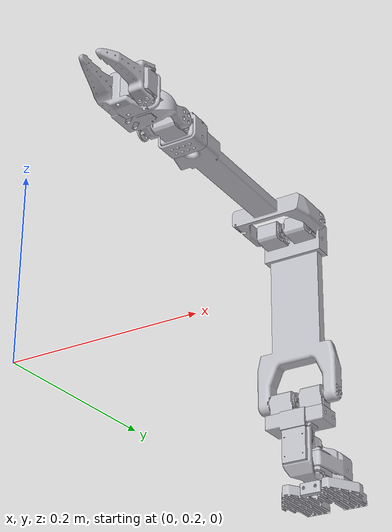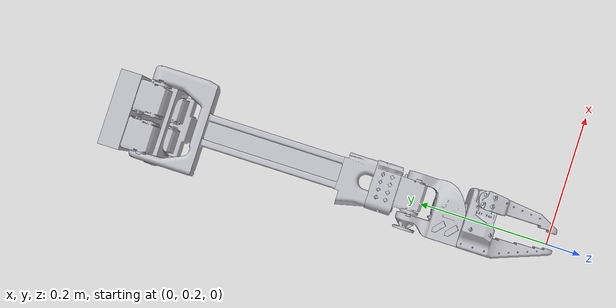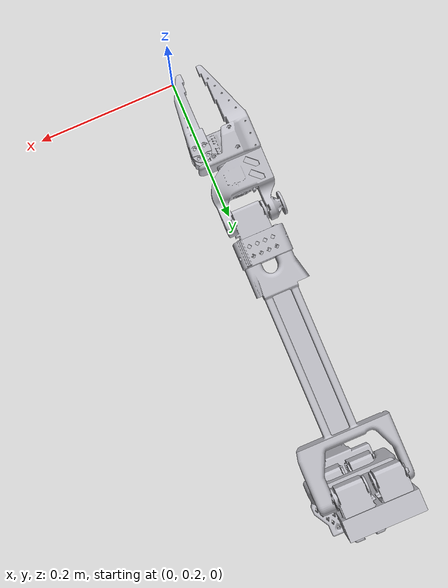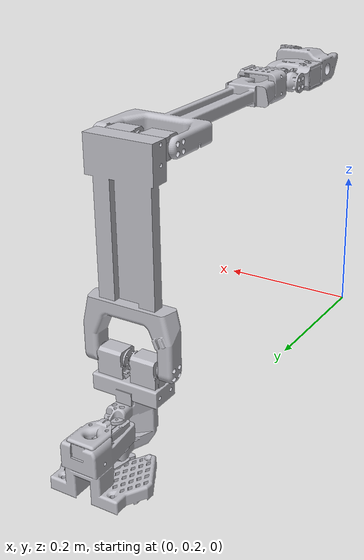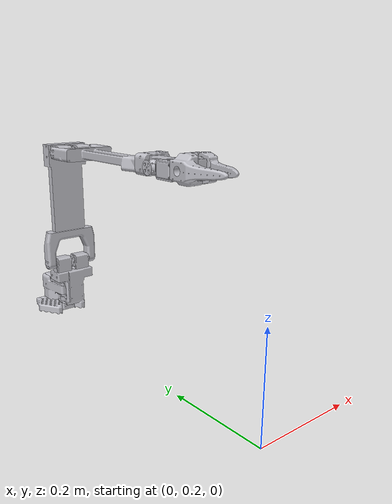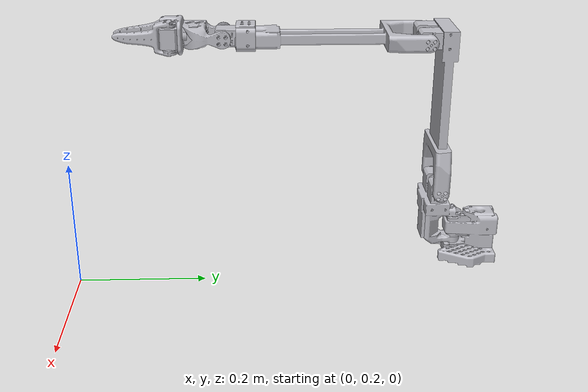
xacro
<?xml version="1.0" ?>
<robot name="PingTi_Arm_5DOF_v4_copy" xmlns:xacro="http://www.ros.org/wiki/xacro">

<xacro:include filename="$(find PingTi_Arm_5DOF_v4_copy_description)/urdf/materials.xacro" />
<xacro:include filename="$(find PingTi_Arm_5DOF_v4_copy_description)/urdf/PingTi_Arm_5DOF_v4_copy.trans" />
<xacro:include filename="$(find PingTi_Arm_5DOF_v4_copy_description)/urdf/PingTi_Arm_5DOF_v4_copy.gazebo" />
<link name="base_link">
  <inertial>
    <origin xyz="-3.294222799751554e-06 0.8236699206879414 0.07022225351061052" rpy="0 0 0"/>
    <mass value="1.1606702094747876"/>
    <inertia ixx="0.001182" iyy="0.001221" izz="0.001296" ixy="-0.0" iyz="-0.000216" ixz="0.0"/>
  </inertial>
  <visual>
    <origin xyz="0 0 0" rpy="0 0 0"/>
    <geometry>
      <mesh filename="/home/cirp-lab/moore/prefab_robots/PingTi_Arm_v3/PingTi_Arm_5DOF_v4_copy_description/meshes/base_link.stl" scale="0.001 0.001 0.001"/>
    </geometry>
    <material name="silver"/>
  </visual>
  <collision>
    <origin xyz="0 0 0" rpy="0 0 0"/>
    <geometry>
      <mesh filename="/home/cirp-lab/moore/prefab_robots/PingTi_Arm_v3/PingTi_Arm_5DOF_v4_copy_description/meshes/base_link.stl" scale="0.001 0.001 0.001"/>
    </geometry>
  </collision>
</link>

<link name="elbow_link_1">
  <inertial>
    <origin xyz="-0.03226838925461216 -0.12833817907324507 -0.0007166743734490777" rpy="0 0 0"/>
    <mass value="1.3198480613227268"/>
    <inertia ixx="0.009627" iyy="0.000869" izz="0.010402" ixy="-0.000472" iyz="-4.8e-05" ixz="-2e-06"/>
  </inertial>
  <visual>
    <origin xyz="-0.04035 -0.73013 -0.397948" rpy="0 0 0"/>
    <geometry>
      <mesh filename="/home/cirp-lab/moore/prefab_robots/PingTi_Arm_v3/PingTi_Arm_5DOF_v4_copy_description/meshes/elbow_link_1.stl" scale="0.001 0.001 0.001"/>
    </geometry>
    <material name="silver"/>
  </visual>
  <collision>
    <origin xyz="-0.04035 -0.73013 -0.397948" rpy="0 0 0"/>
    <geometry>
      <mesh filename="/home/cirp-lab/moore/prefab_robots/PingTi_Arm_v3/PingTi_Arm_5DOF_v4_copy_description/meshes/elbow_link_1.stl" scale="0.001 0.001 0.001"/>
    </geometry>
  </collision>
</link>

<link name="STS3215_wrist_pitch_1">
  <inertial>
    <origin xyz="-0.017826879672448774 -0.012098807908752285 -3.210009195120378e-07" rpy="0 0 0"/>
    <mass value="0.2843033831904074"/>
    <inertia ixx="6.2e-05" iyy="4e-05" izz="7.3e-05" ixy="-1e-06" iyz="-0.0" ixz="-0.0"/>
  </inertial>
  <visual>
    <origin xyz="-0.024329 -0.46443 -0.400273" rpy="0 0 0"/>
    <geometry>
      <mesh filename="/home/cirp-lab/moore/prefab_robots/PingTi_Arm_v3/PingTi_Arm_5DOF_v4_copy_description/meshes/STS3215_wrist_pitch_1.stl" scale="0.001 0.001 0.001"/>
    </geometry>
    <material name="silver"/>
  </visual>
  <collision>
    <origin xyz="-0.024329 -0.46443 -0.400273" rpy="0 0 0"/>
    <geometry>
      <mesh filename="/home/cirp-lab/moore/prefab_robots/PingTi_Arm_v3/PingTi_Arm_5DOF_v4_copy_description/meshes/STS3215_wrist_pitch_1.stl" scale="0.001 0.001 0.001"/>
    </geometry>
  </collision>
</link>

<link name="wrist_link_1">
  <inertial>
    <origin xyz="0.015355318917251514 -0.026091094070632037 -5.328250413333402e-05" rpy="0 0 0"/>
    <mass value="0.22921407551598705"/>
    <inertia ixx="0.00011" iyy="0.000122" izz="0.000191" ixy="-5e-06" iyz="0.0" ixz="0.0"/>
  </inertial>
  <visual>
    <origin xyz="0.013571 -0.43998 -0.399823" rpy="0 0 0"/>
    <geometry>
      <mesh filename="/home/cirp-lab/moore/prefab_robots/PingTi_Arm_v3/PingTi_Arm_5DOF_v4_copy_description/meshes/wrist_link_1.stl" scale="0.001 0.001 0.001"/>
    </geometry>
    <material name="silver"/>
  </visual>
  <collision>
    <origin xyz="0.013571 -0.43998 -0.399823" rpy="0 0 0"/>
    <geometry>
      <mesh filename="/home/cirp-lab/moore/prefab_robots/PingTi_Arm_v3/PingTi_Arm_5DOF_v4_copy_description/meshes/wrist_link_1.stl" scale="0.001 0.001 0.001"/>
    </geometry>
  </collision>
</link>

<link name="STS3215_wrist_roll_1">
  <inertial>
    <origin xyz="-0.01280078718457152 -0.018427300739866648 -3.210009227871957e-07" rpy="0 0 0"/>
    <mass value="0.2843033831904074"/>
    <inertia ixx="4e-05" iyy="6.2e-05" izz="7.3e-05" ixy="1e-06" iyz="-0.0" ixz="0.0"/>
  </inertial>
  <visual>
    <origin xyz="-0.004529 -0.41776 -0.399823" rpy="0 0 0"/>
    <geometry>
      <mesh filename="/home/cirp-lab/moore/prefab_robots/PingTi_Arm_v3/PingTi_Arm_5DOF_v4_copy_description/meshes/STS3215_wrist_roll_1.stl" scale="0.001 0.001 0.001"/>
    </geometry>
    <material name="silver"/>
  </visual>
  <collision>
    <origin xyz="-0.004529 -0.41776 -0.399823" rpy="0 0 0"/>
    <geometry>
      <mesh filename="/home/cirp-lab/moore/prefab_robots/PingTi_Arm_v3/PingTi_Arm_5DOF_v4_copy_description/meshes/STS3215_wrist_roll_1.stl" scale="0.001 0.001 0.001"/>
    </geometry>
  </collision>
</link>

<link name="gripper_mount_1">
  <inertial>
    <origin xyz="-0.015652773080729022 -0.020306011945926294 0.0013358914036544767" rpy="0 0 0"/>
    <mass value="0.44698022927880193"/>
    <inertia ixx="0.000301" iyy="0.000166" izz="0.000333" ixy="-5.6e-05" iyz="1e-06" ixz="4e-06"/>
  </inertial>
  <visual>
    <origin xyz="-0.006169 -0.37926 -0.400273" rpy="0 0 0"/>
    <geometry>
      <mesh filename="/home/cirp-lab/moore/prefab_robots/PingTi_Arm_v3/PingTi_Arm_5DOF_v4_copy_description/meshes/gripper_mount_1.stl" scale="0.001 0.001 0.001"/>
    </geometry>
    <material name="silver"/>
  </visual>
  <collision>
    <origin xyz="-0.006169 -0.37926 -0.400273" rpy="0 0 0"/>
    <geometry>
      <mesh filename="/home/cirp-lab/moore/prefab_robots/PingTi_Arm_v3/PingTi_Arm_5DOF_v4_copy_description/meshes/gripper_mount_1.stl" scale="0.001 0.001 0.001"/>
    </geometry>
  </collision>
</link>

<link name="STS3215_gripper_1">
  <inertial>
    <origin xyz="0.02239948142715992 -2.358219026166175e-07 -0.00012730969740099018" rpy="0 0 0"/>
    <mass value="0.2843033831904074"/>
    <inertia ixx="4e-05" iyy="7.3e-05" izz="6.2e-05" ixy="-0.0" iyz="0.0" ixz="1e-06"/>
  </inertial>
  <visual>
    <origin xyz="0.010721 -0.36486 -0.402552" rpy="0 0 0"/>
    <geometry>
      <mesh filename="/home/cirp-lab/moore/prefab_robots/PingTi_Arm_v3/PingTi_Arm_5DOF_v4_copy_description/meshes/STS3215_gripper_1.stl" scale="0.001 0.001 0.001"/>
    </geometry>
    <material name="silver"/>
  </visual>
  <collision>
    <origin xyz="0.010721 -0.36486 -0.402552" rpy="0 0 0"/>
    <geometry>
      <mesh filename="/home/cirp-lab/moore/prefab_robots/PingTi_Arm_v3/PingTi_Arm_5DOF_v4_copy_description/meshes/STS3215_gripper_1.stl" scale="0.001 0.001 0.001"/>
    </geometry>
  </collision>
</link>

<link name="moving_gripper_1">
  <inertial>
    <origin xyz="-0.0004999008270242869 -0.029253452456021067 0.020784075387621836" rpy="0 0 0"/>
    <mass value="0.1586808414280307"/>
    <inertia ixx="8.7e-05" iyy="2.4e-05" izz="7e-05" ixy="-4e-06" iyz="-2e-06" ixz="-0.0"/>
  </inertial>
  <visual>
    <origin xyz="-0.024479 -0.36486 -0.382352" rpy="0 0 0"/>
    <geometry>
      <mesh filename="/home/cirp-lab/moore/prefab_robots/PingTi_Arm_v3/PingTi_Arm_5DOF_v4_copy_description/meshes/moving_gripper_1.stl" scale="0.001 0.001 0.001"/>
    </geometry>
    <material name="silver"/>
  </visual>
  <collision>
    <origin xyz="-0.024479 -0.36486 -0.382352" rpy="0 0 0"/>
    <geometry>
      <mesh filename="/home/cirp-lab/moore/prefab_robots/PingTi_Arm_v3/PingTi_Arm_5DOF_v4_copy_description/meshes/moving_gripper_1.stl" scale="0.001 0.001 0.001"/>
    </geometry>
  </collision>
</link>

<link name="wrist_mount_link_1">
  <inertial>
    <origin xyz="0.023150392016893624 -5.799018346303031e-05 0.0018439102205746183" rpy="0 0 0"/>
    <mass value="0.10853073755546008"/>
    <inertia ixx="2.7e-05" iyy="5.8e-05" izz="4.6e-05" ixy="0.0" iyz="0.0" ixz="-0.0"/>
  </inertial>
  <visual>
    <origin xyz="0.017721 -0.47293 -0.399948" rpy="0 0 0"/>
    <geometry>
      <mesh filename="/home/cirp-lab/moore/prefab_robots/PingTi_Arm_v3/PingTi_Arm_5DOF_v4_copy_description/meshes/wrist_mount_link_1.stl" scale="0.001 0.001 0.001"/>
    </geometry>
    <material name="silver"/>
  </visual>
  <collision>
    <origin xyz="0.017721 -0.47293 -0.399948" rpy="0 0 0"/>
    <geometry>
      <mesh filename="/home/cirp-lab/moore/prefab_robots/PingTi_Arm_v3/PingTi_Arm_5DOF_v4_copy_description/meshes/wrist_mount_link_1.stl" scale="0.001 0.001 0.001"/>
    </geometry>
  </collision>
</link>

<link name="STS3215_base_yaw_1">
  <inertial>
    <origin xyz="6.7522991337791345e-12 0.023001006764512555 0.00012699691993646456" rpy="0 0 0"/>
    <mass value="0.2843033831904074"/>
    <inertia ixx="7.3e-05" iyy="4e-05" izz="6.2e-05" ixy="-0.0" iyz="1e-06" ixz="0.0"/>
  </inertial>
  <visual>
    <origin xyz="0.0 -0.78468 -0.092798" rpy="0 0 0"/>
    <geometry>
      <mesh filename="/home/cirp-lab/moore/prefab_robots/PingTi_Arm_v3/PingTi_Arm_5DOF_v4_copy_description/meshes/STS3215_base_yaw_1.stl" scale="0.001 0.001 0.001"/>
    </geometry>
    <material name="silver"/>
  </visual>
  <collision>
    <origin xyz="0.0 -0.78468 -0.092798" rpy="0 0 0"/>
    <geometry>
      <mesh filename="/home/cirp-lab/moore/prefab_robots/PingTi_Arm_v3/PingTi_Arm_5DOF_v4_copy_description/meshes/STS3215_base_yaw_1.stl" scale="0.001 0.001 0.001"/>
    </geometry>
  </collision>
</link>

<link name="base_yaw_link_1">
  <inertial>
    <origin xyz="-4.0736267994722074e-05 -0.03387363045696723 0.03628992437564034" rpy="0 0 0"/>
    <mass value="0.8041215139582379"/>
    <inertia ixx="0.000597" iyy="0.000639" izz="0.00036" ixy="1e-06" iyz="4e-05" ixz="-1e-06"/>
  </inertial>
  <visual>
    <origin xyz="0.0 -0.79488 -0.074498" rpy="0 0 0"/>
    <geometry>
      <mesh filename="/home/cirp-lab/moore/prefab_robots/PingTi_Arm_v3/PingTi_Arm_5DOF_v4_copy_description/meshes/base_yaw_link_1.stl" scale="0.001 0.001 0.001"/>
    </geometry>
    <material name="silver"/>
  </visual>
  <collision>
    <origin xyz="0.0 -0.79488 -0.074498" rpy="0 0 0"/>
    <geometry>
      <mesh filename="/home/cirp-lab/moore/prefab_robots/PingTi_Arm_v3/PingTi_Arm_5DOF_v4_copy_description/meshes/base_yaw_link_1.stl" scale="0.001 0.001 0.001"/>
    </geometry>
  </collision>
</link>

<link name="STS3215_shoulder_pitch_1_1">
  <inertial>
    <origin xyz="0.0001270649247201404 3.432095774247301e-08 0.022398959558416753" rpy="0 0 0"/>
    <mass value="0.2843033831904074"/>
    <inertia ixx="6.2e-05" iyy="7.3e-05" izz="4e-05" ixy="-0.0" iyz="-0.0" ixz="-1e-06"/>
  </inertial>
  <visual>
    <origin xyz="-0.020911 -0.76183 -0.131098" rpy="0 0 0"/>
    <geometry>
      <mesh filename="/home/cirp-lab/moore/prefab_robots/PingTi_Arm_v3/PingTi_Arm_5DOF_v4_copy_description/meshes/STS3215_shoulder_pitch_1_1.stl" scale="0.001 0.001 0.001"/>
    </geometry>
    <material name="silver"/>
  </visual>
  <collision>
    <origin xyz="-0.020911 -0.76183 -0.131098" rpy="0 0 0"/>
    <geometry>
      <mesh filename="/home/cirp-lab/moore/prefab_robots/PingTi_Arm_v3/PingTi_Arm_5DOF_v4_copy_description/meshes/STS3215_shoulder_pitch_1_1.stl" scale="0.001 0.001 0.001"/>
    </geometry>
  </collision>
</link>

<link name="STS3215_shoulder_pitch_2_1">
  <inertial>
    <origin xyz="-0.00012706492472672193 3.433446782441507e-08 0.022398959558416948" rpy="0 0 0"/>
    <mass value="0.2843033831904074"/>
    <inertia ixx="6.2e-05" iyy="7.3e-05" izz="4e-05" ixy="-0.0" iyz="0.0" ixz="1e-06"/>
  </inertial>
  <visual>
    <origin xyz="0.020911 -0.76183 -0.131098" rpy="0 0 0"/>
    <geometry>
      <mesh filename="/home/cirp-lab/moore/prefab_robots/PingTi_Arm_v3/PingTi_Arm_5DOF_v4_copy_description/meshes/STS3215_shoulder_pitch_2_1.stl" scale="0.001 0.001 0.001"/>
    </geometry>
    <material name="silver"/>
  </visual>
  <collision>
    <origin xyz="0.020911 -0.76183 -0.131098" rpy="0 0 0"/>
    <geometry>
      <mesh filename="/home/cirp-lab/moore/prefab_robots/PingTi_Arm_v3/PingTi_Arm_5DOF_v4_copy_description/meshes/STS3215_shoulder_pitch_2_1.stl" scale="0.001 0.001 0.001"/>
    </geometry>
  </collision>
</link>

<link name="shoulder_link_1">
  <inertial>
    <origin xyz="0.04062814504148921 1.31958667685117e-05 0.1162721580980865" rpy="0 0 0"/>
    <mass value="1.874822082154528"/>
    <inertia ixx="0.010771" iyy="0.012498" izz="0.001858" ixy="2e-06" iyz="-7.2e-05" ixz="-1.2e-05"/>
  </inertial>
  <visual>
    <origin xyz="0.041111 -0.76183 -0.166298" rpy="0 0 0"/>
    <geometry>
      <mesh filename="/home/cirp-lab/moore/prefab_robots/PingTi_Arm_v3/PingTi_Arm_5DOF_v4_copy_description/meshes/shoulder_link_1.stl" scale="0.001 0.001 0.001"/>
    </geometry>
    <material name="silver"/>
  </visual>
  <collision>
    <origin xyz="0.041111 -0.76183 -0.166298" rpy="0 0 0"/>
    <geometry>
      <mesh filename="/home/cirp-lab/moore/prefab_robots/PingTi_Arm_v3/PingTi_Arm_5DOF_v4_copy_description/meshes/shoulder_link_1.stl" scale="0.001 0.001 0.001"/>
    </geometry>
  </collision>
</link>

<link name="STS3215_elbow_pitch_2_1">
  <inertial>
    <origin xyz="-0.0001270652075187756 -0.022398993235538067 -3.2052973703011745e-07" rpy="0 0 0"/>
    <mass value="0.2843033831904074"/>
    <inertia ixx="6.2e-05" iyy="4e-05" izz="7.3e-05" ixy="-1e-06" iyz="-0.0" ixz="-0.0"/>
  </inertial>
  <visual>
    <origin xyz="0.020972 -0.76533 -0.397948" rpy="0 0 0"/>
    <geometry>
      <mesh filename="/home/cirp-lab/moore/prefab_robots/PingTi_Arm_v3/PingTi_Arm_5DOF_v4_copy_description/meshes/STS3215_elbow_pitch_2_1.stl" scale="0.001 0.001 0.001"/>
    </geometry>
    <material name="silver"/>
  </visual>
  <collision>
    <origin xyz="0.020972 -0.76533 -0.397948" rpy="0 0 0"/>
    <geometry>
      <mesh filename="/home/cirp-lab/moore/prefab_robots/PingTi_Arm_v3/PingTi_Arm_5DOF_v4_copy_description/meshes/STS3215_elbow_pitch_2_1.stl" scale="0.001 0.001 0.001"/>
    </geometry>
  </collision>
</link>

<link name="STS3215_elbow_pitch_1_1">
  <inertial>
    <origin xyz="0.00012706464192491218 -0.022398993235538178 -3.205432422270782e-07" rpy="0 0 0"/>
    <mass value="0.2843033831904074"/>
    <inertia ixx="6.2e-05" iyy="4e-05" izz="7.3e-05" ixy="1e-06" iyz="0.0" ixz="-0.0"/>
  </inertial>
  <visual>
    <origin xyz="-0.02015 -0.76533 -0.397948" rpy="0 0 0"/>
    <geometry>
      <mesh filename="/home/cirp-lab/moore/prefab_robots/PingTi_Arm_v3/PingTi_Arm_5DOF_v4_copy_description/meshes/STS3215_elbow_pitch_1_1.stl" scale="0.001 0.001 0.001"/>
    </geometry>
    <material name="silver"/>
  </visual>
  <collision>
    <origin xyz="-0.02015 -0.76533 -0.397948" rpy="0 0 0"/>
    <geometry>
      <mesh filename="/home/cirp-lab/moore/prefab_robots/PingTi_Arm_v3/PingTi_Arm_5DOF_v4_copy_description/meshes/STS3215_elbow_pitch_1_1.stl" scale="0.001 0.001 0.001"/>
    </geometry>
  </collision>
</link>

<joint name="elbow_pitch" type="revolute">
  <origin xyz="0.0202 -0.0352 0.0" rpy="0 0 0"/>
  <parent link="STS3215_elbow_pitch_1_1"/>
  <child link="elbow_link_1"/>
  <axis xyz="-1.0 0.0 -0.0"/>
  <limit upper="1.919862" lower="-1.570796" effort="100" velocity="100"/>
</joint>

<joint name="elbow_wrist_servo_connect" type="fixed">
  <origin xyz="-0.016021 -0.2657 0.002325" rpy="0 0 0"/>
  <parent link="elbow_link_1"/>
  <child link="STS3215_wrist_pitch_1"/>
</joint>

<joint name="wrist_pitch" type="revolute">
  <origin xyz="-0.0379 -0.02445 -0.00045" rpy="0 0 0"/>
  <parent link="STS3215_wrist_pitch_1"/>
  <child link="wrist_link_1"/>
  <axis xyz="-1.0 0.0 0.0"/>
  <limit upper="1.919862" lower="-1.919862" effort="100" velocity="100"/>
</joint>

<joint name="wrist_wrist_roll_connect" type="fixed">
  <origin xyz="0.0181 -0.02222 0.0" rpy="0 0 0"/>
  <parent link="wrist_link_1"/>
  <child link="STS3215_wrist_roll_1"/>
</joint>

<joint name="wrist_roll" type="continuous">
  <origin xyz="0.00164 -0.0385 0.00045" rpy="0 0 0"/>
  <parent link="STS3215_wrist_roll_1"/>
  <child link="gripper_mount_1"/>
  <axis xyz="0.0 -1.0 -0.0"/>
</joint>

<joint name="wrist_griper_mount_connect" type="fixed">
  <origin xyz="-0.01689 -0.0144 0.002279" rpy="0 0 0"/>
  <parent link="gripper_mount_1"/>
  <child link="STS3215_gripper_1"/>
</joint>

<joint name="gripper_moving" type="revolute">
  <origin xyz="0.0352 0.0 -0.0202" rpy="0 0 0"/>
  <parent link="STS3215_gripper_1"/>
  <child link="moving_gripper_1"/>
  <axis xyz="0.0 -0.0 1.0"/>
  <limit upper="1.570796" lower="-0.20944" effort="100" velocity="100"/>
</joint>

<joint name="wrist_mount_connect" type="fixed">
  <origin xyz="-0.058071 -0.2572 0.002" rpy="0 0 0"/>
  <parent link="elbow_link_1"/>
  <child link="wrist_mount_link_1"/>
</joint>

<joint name="base_link_mount_connect" type="fixed">
  <origin xyz="0.0 0.78468 0.092798" rpy="0 0 0"/>
  <parent link="base_link"/>
  <child link="STS3215_base_yaw_1"/>
</joint>

<joint name="base_yaw" type="revolute">
  <origin xyz="0.0 0.0102 -0.0183" rpy="0 0 0"/>
  <parent link="STS3215_base_yaw_1"/>
  <child link="base_yaw_link_1"/>
  <axis xyz="0.0 0.0 -1.0"/>
  <limit upper="1.919862" lower="-1.919862" effort="100" velocity="100"/>
</joint>

<joint name="base_yaw_link_servo_1_connect" type="fixed">
  <origin xyz="0.020911 -0.03305 0.0566" rpy="0 0 0"/>
  <parent link="base_yaw_link_1"/>
  <child link="STS3215_shoulder_pitch_1_1"/>
</joint>

<joint name="base_yaw_link_servo_2_connect" type="fixed">
  <origin xyz="-0.020911 -0.03305 0.0566" rpy="0 0 0"/>
  <parent link="base_yaw_link_1"/>
  <child link="STS3215_shoulder_pitch_2_1"/>
</joint>

<joint name="shoulder_pitch" type="revolute">
  <origin xyz="-0.0202 0.0 0.0352" rpy="0 0 0"/>
  <parent link="STS3215_shoulder_pitch_2_1"/>
  <child link="shoulder_link_1"/>
  <axis xyz="1.0 -0.0 0.0"/>
  <limit upper="1.745329" lower="-1.919862" effort="100" velocity="100"/>
</joint>

<joint name="Rigid 24" type="fixed">
  <origin xyz="0.020139 0.0035 0.23165" rpy="0 0 0"/>
  <parent link="shoulder_link_1"/>
  <child link="STS3215_elbow_pitch_2_1"/>
</joint>

<joint name="Rigid 25" type="fixed">
  <origin xyz="0.061261 0.0035 0.23165" rpy="0 0 0"/>
  <parent link="shoulder_link_1"/>
  <child link="STS3215_elbow_pitch_1_1"/>
</joint>

</robot>
